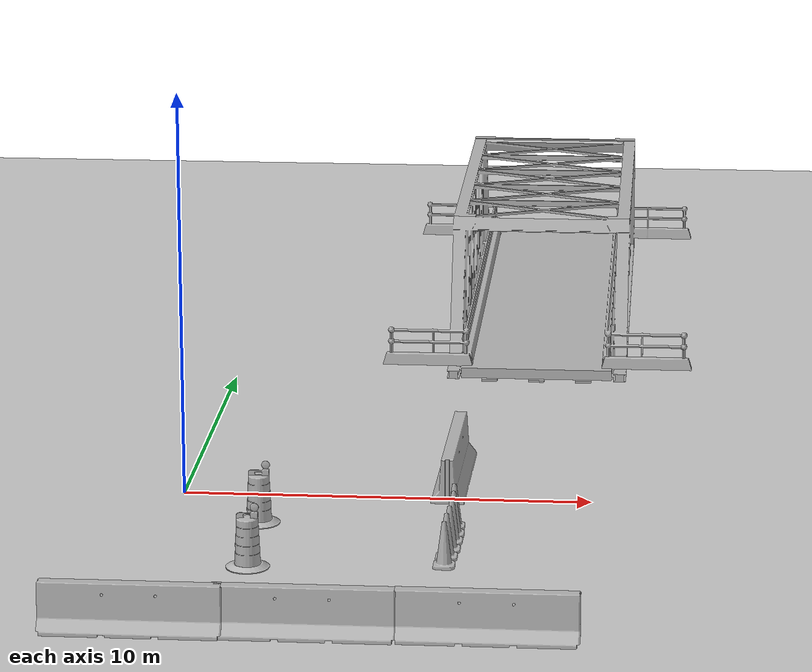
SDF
<sdf version="1.6">
 <world name="default">
  <model name="ground_plane">
   <static>1</static>
   <link name="link">
    <collision name="collision">
     <geometry><plane><normal>0 0 1</normal><size>100 100</size></plane></geometry>
     <surface>
      <contact><collide_bitmask>65535</collide_bitmask></contact>
      <friction><ode><mu>100</mu><mu2>50</mu2></ode></friction>
     </surface>
    </collision>
    <visual name="visual">
     <cast_shadows>0</cast_shadows>
     <geometry><plane><normal>0 0 1</normal><size>100 100</size></plane></geometry>
     <material>
      <script><uri>file://media/materials/scripts/gazebo.material</uri><name>Gazebo/Grey</name></script>
     </material>
    </visual>
   </link>
  </model>
  <model name="ball_bearing">
   <link name="link">
    <pose>0 0 0.003 0 -0 0</pose>
    <inertial>
     <mass>0.0011</mass>
     <inertia>
      <ixx>3.96e-09</ixx>
      <ixy>0</ixy>
      <ixz>0</ixz>
      <iyy>3.96e-09</iyy>
      <iyz>0</iyz>
      <izz>3.96e-09</izz>
     </inertia>
    </inertial>
    <collision name="collision">
     <geometry><sphere><radius>0.003</radius></sphere></geometry>
     <surface>
      <contact>
       <poissons_ratio>0.305</poissons_ratio>
       <elastic_modulus>2e+11</elastic_modulus>
       <ode><kp>100000</kp><kd>100</kd><max_vel>100</max_vel><min_depth>0.001</min_depth></ode>
      </contact>
      <friction>
       <torsional>
        <coefficient>1</coefficient>
        <use_patch_radius>0</use_patch_radius>
        <surface_radius>0.01</surface_radius>
       </torsional>
      </friction>
     </surface>
    </collision>
    <visual name="visual">
     <geometry><sphere><radius>0.003</radius></sphere></geometry>
     <material>
      <script><uri>file://media/materials/scripts/gazebo.material</uri><name>Gazebo/Grey</name></script>
     </material>
    </visual>
    <velocity_decay><linear>0</linear><angular>0.005</angular></velocity_decay>
   </link>
   <pose>-1.98846 -0.824276 -0.000268 0 -0 0</pose>
  </model>
  <model name="truss_bridge">
   <static>1</static>
   <link name="link">
    <collision name="collision">
     <geometry><mesh><uri>model://truss_bridge/meshes/truss_bridge.dae</uri></mesh></geometry>
    </collision>
    <visual name="visual">
     <geometry><mesh><uri>model://truss_bridge/meshes/truss_bridge.dae</uri></mesh></geometry>
    </visual>
   </link>
   <pose>8.20845 18.0969 0 0 -0 0</pose>
  </model>
  <model name="jersey_barrier">
   <static>1</static>
   <link name="link">
    <visual name="visual">
     <geometry><mesh><uri>model://jersey_barrier/meshes/jersey_barrier.dae</uri></mesh></geometry>
    </visual>
    <collision name="upright">
     <pose>0 0 0.5715 0 -0 0</pose>
     <geometry><box><size>4.06542 0.3063 1.143</size></box></geometry>
    </collision>
    <collision name="base">
     <pose>0 0 0.032258 0 -0 0</pose>
     <geometry><box><size>4.06542 0.8107 0.064516</size></box></geometry>
    </collision>
    <collision name="base2">
     <pose>0 0 0.1 0 -0 0</pose>
     <geometry><box><size>4.06542 0.65 0.1</size></box></geometry>
    </collision>
    <collision name="base3">
     <pose>0 0 0.2 0 -0 0</pose>
     <geometry><box><size>4.06542 0.5 0.1</size></box></geometry>
    </collision>
    <collision name="left-angle">
     <pose>0 -0.224 0.2401 0.9 -0 0</pose>
     <geometry><box><size>4.06542 0.5 0.064516</size></box></geometry>
    </collision>
    <collision name="right-angle">
     <pose>0 0.224 0.2401 -0.9 0 0</pose>
     <geometry><box><size>4.06542 0.5 0.064516</size></box></geometry>
    </collision>
   </link>
   <pose>7.9805 -9.51426 0 0 -0 0</pose>
  </model>
  <model name="jersey_barrier_0">
   <static>1</static>
   <link name="link">
    <visual name="visual">
     <geometry><mesh><uri>model://jersey_barrier/meshes/jersey_barrier.dae</uri></mesh></geometry>
    </visual>
    <collision name="upright">
     <pose>0 0 0.5715 0 -0 0</pose>
     <geometry><box><size>4.06542 0.3063 1.143</size></box></geometry>
    </collision>
    <collision name="base">
     <pose>0 0 0.032258 0 -0 0</pose>
     <geometry><box><size>4.06542 0.8107 0.064516</size></box></geometry>
    </collision>
    <collision name="base2">
     <pose>0 0 0.1 0 -0 0</pose>
     <geometry><box><size>4.06542 0.65 0.1</size></box></geometry>
    </collision>
    <collision name="base3">
     <pose>0 0 0.2 0 -0 0</pose>
     <geometry><box><size>4.06542 0.5 0.1</size></box></geometry>
    </collision>
    <collision name="left-angle">
     <pose>0 -0.224 0.2401 0.9 -0 0</pose>
     <geometry><box><size>4.06542 0.5 0.064516</size></box></geometry>
    </collision>
    <collision name="right-angle">
     <pose>0 0.224 0.2401 -0.9 0 0</pose>
     <geometry><box><size>4.06542 0.5 0.064516</size></box></geometry>
    </collision>
   </link>
   <pose>3.97309 -9.53679 0 0 -0 0</pose>
  </model>
  <model name="jersey_barrier_1">
   <static>1</static>
   <link name="link">
    <visual name="visual">
     <geometry><mesh><uri>model://jersey_barrier/meshes/jersey_barrier.dae</uri></mesh></geometry>
    </visual>
    <collision name="upright">
     <pose>0 0 0.5715 0 -0 0</pose>
     <geometry><box><size>4.06542 0.3063 1.143</size></box></geometry>
    </collision>
    <collision name="base">
     <pose>0 0 0.032258 0 -0 0</pose>
     <geometry><box><size>4.06542 0.8107 0.064516</size></box></geometry>
    </collision>
    <collision name="base2">
     <pose>0 0 0.1 0 -0 0</pose>
     <geometry><box><size>4.06542 0.65 0.1</size></box></geometry>
    </collision>
    <collision name="base3">
     <pose>0 0 0.2 0 -0 0</pose>
     <geometry><box><size>4.06542 0.5 0.1</size></box></geometry>
    </collision>
    <collision name="left-angle">
     <pose>0 -0.224 0.2401 0.9 -0 0</pose>
     <geometry><box><size>4.06542 0.5 0.064516</size></box></geometry>
    </collision>
    <collision name="right-angle">
     <pose>0 0.224 0.2401 -0.9 0 0</pose>
     <geometry><box><size>4.06542 0.5 0.064516</size></box></geometry>
    </collision>
   </link>
   <pose>0.182624 -9.5822 0 0 -0 0</pose>
  </model>
  <model name="Construction Cone">
   <link name="link">
    <collision name="collision">
     <geometry>
      <mesh><scale>10 10 10</scale><uri>model://construction_cone/meshes/construction_cone.dae</uri></mesh>
     </geometry>
    </collision>
    <visual name="visual">
     <geometry>
      <mesh><scale>10 10 10</scale><uri>model://construction_cone/meshes/construction_cone.dae</uri></mesh>
     </geometry>
    </visual>
    <inertial>
     <inertia><ixx>1</ixx><ixy>0</ixy><ixz>0</ixz><iyy>1</iyy><iyz>0</iyz><izz>1</izz></inertia>
     <mass>1</mass>
    </inertial>
   </link>
   <pose>6.73186 -4.86401 -1e-05 -1e-06 0 0</pose>
  </model>
  <model name="Construction Cone_0">
   <link name="link">
    <collision name="collision">
     <geometry>
      <mesh><scale>10 10 10</scale><uri>model://construction_cone/meshes/construction_cone.dae</uri></mesh>
     </geometry>
    </collision>
    <visual name="visual">
     <geometry>
      <mesh><scale>10 10 10</scale><uri>model://construction_cone/meshes/construction_cone.dae</uri></mesh>
     </geometry>
    </visual>
    <inertial>
     <inertia><ixx>1</ixx><ixy>0</ixy><ixz>0</ixz><iyy>1</iyy><iyz>0</iyz><izz>1</izz></inertia>
     <mass>1</mass>
    </inertial>
   </link>
   <pose>6.74659 -4.26998 -1e-05 -1e-06 0 0</pose>
  </model>
  <model name="Construction Cone_1">
   <link name="link">
    <collision name="collision">
     <geometry>
      <mesh><scale>10 10 10</scale><uri>model://construction_cone/meshes/construction_cone.dae</uri></mesh>
     </geometry>
    </collision>
    <visual name="visual">
     <geometry>
      <mesh><scale>10 10 10</scale><uri>model://construction_cone/meshes/construction_cone.dae</uri></mesh>
     </geometry>
    </visual>
    <inertial>
     <inertia><ixx>1</ixx><ixy>0</ixy><ixz>0</ixz><iyy>1</iyy><iyz>0</iyz><izz>1</izz></inertia>
     <mass>1</mass>
    </inertial>
   </link>
   <pose>6.77975 -3.7413 -2e-06 -3e-06 -1e-06 -0</pose>
  </model>
  <model name="Construction Cone_2">
   <link name="link">
    <collision name="collision">
     <geometry>
      <mesh><scale>10 10 10</scale><uri>model://construction_cone/meshes/construction_cone.dae</uri></mesh>
     </geometry>
    </collision>
    <visual name="visual">
     <geometry>
      <mesh><scale>10 10 10</scale><uri>model://construction_cone/meshes/construction_cone.dae</uri></mesh>
     </geometry>
    </visual>
    <inertial>
     <inertia><ixx>1</ixx><ixy>0</ixy><ixz>0</ixz><iyy>1</iyy><iyz>0</iyz><izz>1</izz></inertia>
     <mass>1</mass>
    </inertial>
   </link>
   <pose>6.79558 -3.15733 0 0 -0 0</pose>
  </model>
  <model name="Construction Cone_3">
   <link name="link">
    <collision name="collision">
     <geometry>
      <mesh><scale>10 10 10</scale><uri>model://construction_cone/meshes/construction_cone.dae</uri></mesh>
     </geometry>
    </collision>
    <visual name="visual">
     <geometry>
      <mesh><scale>10 10 10</scale><uri>model://construction_cone/meshes/construction_cone.dae</uri></mesh>
     </geometry>
    </visual>
    <inertial>
     <inertia><ixx>1</ixx><ixy>0</ixy><ixz>0</ixz><iyy>1</iyy><iyz>0</iyz><izz>1</izz></inertia>
     <mass>1</mass>
    </inertial>
   </link>
   <pose>6.80486 -2.64054 -6e-06 -4e-06 0 0</pose>
  </model>
  <model name="Construction Cone_4">
   <link name="link">
    <collision name="collision">
     <geometry>
      <mesh><scale>10 10 10</scale><uri>model://construction_cone/meshes/construction_cone.dae</uri></mesh>
     </geometry>
    </collision>
    <visual name="visual">
     <geometry>
      <mesh><scale>10 10 10</scale><uri>model://construction_cone/meshes/construction_cone.dae</uri></mesh>
     </geometry>
    </visual>
    <inertial>
     <inertia><ixx>1</ixx><ixy>0</ixy><ixz>0</ixz><iyy>1</iyy><iyz>0</iyz><izz>1</izz></inertia>
     <mass>1</mass>
    </inertial>
   </link>
   <pose>6.78334 -2.08597 0 0 -0 0</pose>
  </model>
  <model name="Construction Barrel_1">
   <link name="link">
    <inertial>
     <pose>0 0 0.4 0 -0 0</pose>
     <mass>500</mass>
     <inertia><ixx>51.2096</ixx><iyy>51.2096</iyy><izz>25</izz><ixy>0</ixy><ixz>0</ixz><iyz>0</iyz></inertia>
    </inertial>
    <collision name="collision">
     <geometry><mesh><uri>model://construction_barrel/meshes/construction_barrel.dae</uri></mesh></geometry>
    </collision>
    <visual name="visual">
     <geometry><mesh><uri>model://construction_barrel/meshes/construction_barrel.dae</uri></mesh></geometry>
    </visual>
   </link>
   <pose>2.09891 -2.07128 -1e-06 4e-06 -2e-06 3.4e-05</pose>
  </model>
  <model name="Construction Barrel">
   <link name="link">
    <inertial>
     <pose>0 0 0.4 0 -0 0</pose>
     <mass>500</mass>
     <inertia><ixx>51.2096</ixx><iyy>51.2096</iyy><izz>25</izz><ixy>0</ixy><ixz>0</ixz><iyz>0</iyz></inertia>
    </inertial>
    <collision name="collision">
     <geometry><mesh><uri>model://construction_barrel/meshes/construction_barrel.dae</uri></mesh></geometry>
    </collision>
    <visual name="visual">
     <geometry><mesh><uri>model://construction_barrel/meshes/construction_barrel.dae</uri></mesh></geometry>
    </visual>
   </link>
   <pose>2.21662 -5.2202 -2e-06 -0 7e-06 -8e-06</pose>
  </model>
  <model name="jersey_barrier_4">
   <static>1</static>
   <link name="link">
    <visual name="visual">
     <geometry><mesh><uri>model://jersey_barrier/meshes/jersey_barrier.dae</uri></mesh></geometry>
    </visual>
    <collision name="upright">
     <pose>0 0 0.5715 0 -0 0</pose>
     <geometry><box><size>4.06542 0.3063 1.143</size></box></geometry>
    </collision>
    <collision name="base">
     <pose>0 0 0.032258 0 -0 0</pose>
     <geometry><box><size>4.06542 0.8107 0.064516</size></box></geometry>
    </collision>
    <collision name="base2">
     <pose>0 0 0.1 0 -0 0</pose>
     <geometry><box><size>4.06542 0.65 0.1</size></box></geometry>
    </collision>
    <collision name="base3">
     <pose>0 0 0.2 0 -0 0</pose>
     <geometry><box><size>4.06542 0.5 0.1</size></box></geometry>
    </collision>
    <collision name="left-angle">
     <pose>0 -0.224 0.2401 0.9 -0 0</pose>
     <geometry><box><size>4.06542 0.5 0.064516</size></box></geometry>
    </collision>
    <collision name="right-angle">
     <pose>0 0.224 0.2401 -0.9 0 0</pose>
     <geometry><box><size>4.06542 0.5 0.064516</size></box></geometry>
    </collision>
   </link>
   <pose>6.53788 1.59551 0 0 -0 1.55337</pose>
  </model>
 </world>
</sdf>
